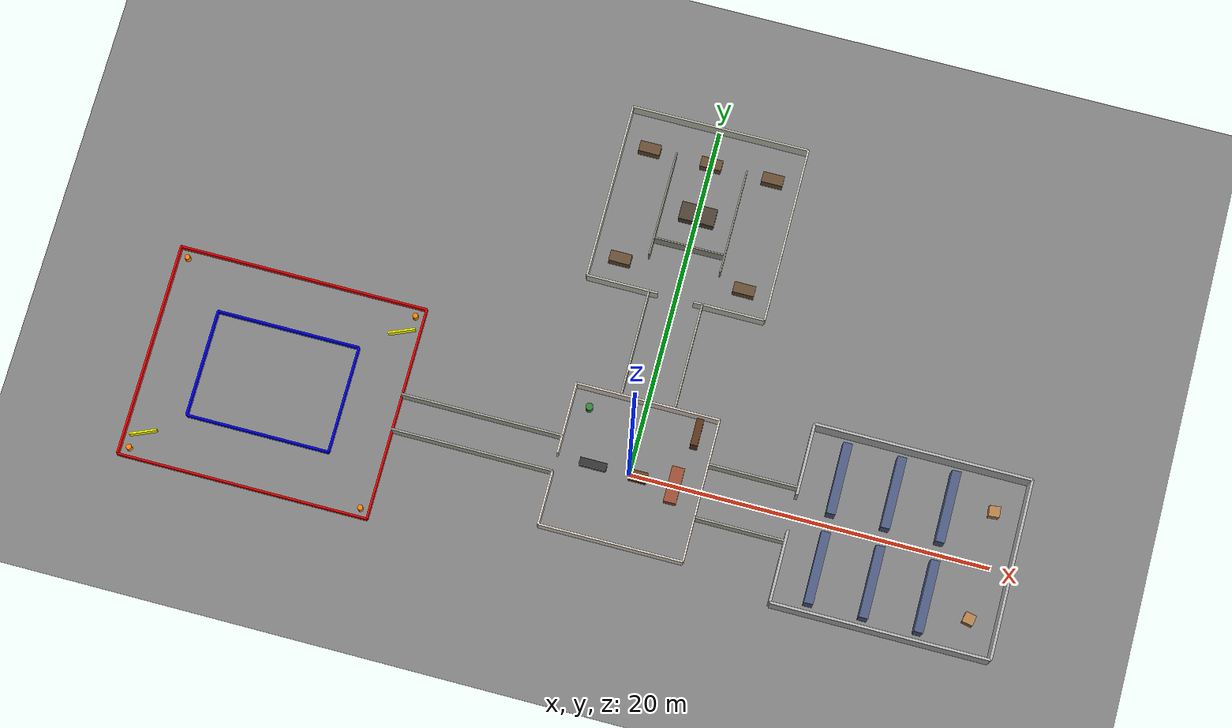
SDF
<sdf version="1.8">
 <world name="full_world">
  <model name="ground_plane">
   <static>true</static>
   <link name="link">
    <collision name="collision">
     <geometry><plane><normal>0 0 1</normal><size>200 200</size></plane></geometry>
    </collision>
    <visual name="visual">
     <geometry><plane><normal>0 0 1</normal><size>200 200</size></plane></geometry>
     <material><ambient>0.5 0.5 0.5 1</ambient><diffuse>0.5 0.5 0.5 1</diffuse></material>
    </visual>
   </link>
  </model>
  <model name="room_wall_n">
   <static>true</static>
   <pose>0 4 0.5 0 0 0</pose>
   <link name="link">
    <collision name="collision"><geometry><box><size>8 0.1 1</size></box></geometry></collision>
    <visual name="visual">
     <geometry><box><size>8 0.1 1</size></box></geometry>
     <material><ambient>0.9 0.85 0.8 1</ambient><diffuse>0.9 0.85 0.8 1</diffuse></material>
    </visual>
   </link>
  </model>
  <model name="room_wall_s">
   <static>true</static>
   <pose>0 -4 0.5 0 0 0</pose>
   <link name="link">
    <collision name="collision"><geometry><box><size>8 0.1 1</size></box></geometry></collision>
    <visual name="visual">
     <geometry><box><size>8 0.1 1</size></box></geometry>
     <material><ambient>0.9 0.85 0.8 1</ambient><diffuse>0.9 0.85 0.8 1</diffuse></material>
    </visual>
   </link>
  </model>
  <model name="room_wall_e">
   <static>true</static>
   <pose>4 0 0.5 0 0 0</pose>
   <link name="link">
    <collision name="collision"><geometry><box><size>0.1 8 1</size></box></geometry></collision>
    <visual name="visual">
     <geometry><box><size>0.1 8 1</size></box></geometry>
     <material><ambient>0.9 0.85 0.8 1</ambient><diffuse>0.9 0.85 0.8 1</diffuse></material>
    </visual>
   </link>
  </model>
  <model name="room_wall_w1">
   <static>true</static>
   <pose>-4 2 0.5 0 0 0</pose>
   <link name="link">
    <collision name="collision"><geometry><box><size>0.1 4 1</size></box></geometry></collision>
    <visual name="visual">
     <geometry><box><size>0.1 4 1</size></box></geometry>
     <material><ambient>0.9 0.85 0.8 1</ambient><diffuse>0.9 0.85 0.8 1</diffuse></material>
    </visual>
   </link>
  </model>
  <model name="room_wall_w2">
   <static>true</static>
   <pose>-4 -2.5 0.5 0 0 0</pose>
   <link name="link">
    <collision name="collision"><geometry><box><size>0.1 3 1</size></box></geometry></collision>
    <visual name="visual">
     <geometry><box><size>0.1 3 1</size></box></geometry>
     <material><ambient>0.9 0.85 0.8 1</ambient><diffuse>0.9 0.85 0.8 1</diffuse></material>
    </visual>
   </link>
  </model>
  <model name="sofa">
   <static>true</static>
   <pose>2.5 0 0.3 0 0 1.57</pose>
   <link name="link">
    <collision name="collision"><geometry><box><size>2 0.7 0.6</size></box></geometry></collision>
    <visual name="visual">
     <geometry><box><size>2 0.7 0.6</size></box></geometry>
     <material><ambient>0.6 0.3 0.2 1</ambient><diffuse>0.6 0.3 0.2 1</diffuse></material>
    </visual>
   </link>
  </model>
  <model name="coffee_table">
   <static>true</static>
   <pose>0.5 0 0.2 0 0 0</pose>
   <link name="link">
    <collision name="collision"><geometry><box><size>1 0.6 0.4</size></box></geometry></collision>
    <visual name="visual">
     <geometry><box><size>1 0.6 0.4</size></box></geometry>
     <material><ambient>0.4 0.25 0.1 1</ambient><diffuse>0.4 0.25 0.1 1</diffuse></material>
    </visual>
   </link>
  </model>
  <model name="tv_stand">
   <static>true</static>
   <pose>-2 0 0.3 0 0 0</pose>
   <link name="link">
    <collision name="collision"><geometry><box><size>1.5 0.4 0.6</size></box></geometry></collision>
    <visual name="visual">
     <geometry><box><size>1.5 0.4 0.6</size></box></geometry>
     <material><ambient>0.2 0.2 0.2 1</ambient><diffuse>0.2 0.2 0.2 1</diffuse></material>
    </visual>
   </link>
  </model>
  <model name="bookshelf">
   <static>true</static>
   <pose>3 3 0.6 0 0 0</pose>
   <link name="link">
    <collision name="collision"><geometry><box><size>0.4 1.5 1.2</size></box></geometry></collision>
    <visual name="visual">
     <geometry><box><size>0.4 1.5 1.2</size></box></geometry>
     <material><ambient>0.35 0.2 0.1 1</ambient><diffuse>0.35 0.2 0.1 1</diffuse></material>
    </visual>
   </link>
  </model>
  <model name="plant1">
   <static>true</static>
   <pose>-3 3 0.3 0 0 0</pose>
   <link name="link">
    <collision name="collision">
     <geometry><cylinder><radius>0.2</radius><length>0.6</length></cylinder></geometry>
    </collision>
    <visual name="visual">
     <geometry><cylinder><radius>0.2</radius><length>0.6</length></cylinder></geometry>
     <material><ambient>0.2 0.5 0.2 1</ambient><diffuse>0.2 0.5 0.2 1</diffuse></material>
    </visual>
   </link>
  </model>
  <model name="wh_wall_n">
   <static>true</static>
   <pose>15 5 0.75 0 0 0</pose>
   <link name="link">
    <collision name="collision"><geometry><box><size>12 0.15 1.5</size></box></geometry></collision>
    <visual name="visual">
     <geometry><box><size>12 0.15 1.5</size></box></geometry>
     <material><ambient>0.7 0.7 0.7 1</ambient><diffuse>0.7 0.7 0.7 1</diffuse></material>
    </visual>
   </link>
  </model>
  <model name="wh_wall_s">
   <static>true</static>
   <pose>15 -5 0.75 0 0 0</pose>
   <link name="link">
    <collision name="collision"><geometry><box><size>12 0.15 1.5</size></box></geometry></collision>
    <visual name="visual">
     <geometry><box><size>12 0.15 1.5</size></box></geometry>
     <material><ambient>0.7 0.7 0.7 1</ambient><diffuse>0.7 0.7 0.7 1</diffuse></material>
    </visual>
   </link>
  </model>
  <model name="wh_wall_e">
   <static>true</static>
   <pose>21 0 0.75 0 0 0</pose>
   <link name="link">
    <collision name="collision"><geometry><box><size>0.15 10 1.5</size></box></geometry></collision>
    <visual name="visual">
     <geometry><box><size>0.15 10 1.5</size></box></geometry>
     <material><ambient>0.7 0.7 0.7 1</ambient><diffuse>0.7 0.7 0.7 1</diffuse></material>
    </visual>
   </link>
  </model>
  <model name="wh_wall_w1">
   <static>true</static>
   <pose>9 3 0.75 0 0 0</pose>
   <link name="link">
    <collision name="collision"><geometry><box><size>0.15 4 1.5</size></box></geometry></collision>
    <visual name="visual">
     <geometry><box><size>0.15 4 1.5</size></box></geometry>
     <material><ambient>0.7 0.7 0.7 1</ambient><diffuse>0.7 0.7 0.7 1</diffuse></material>
    </visual>
   </link>
  </model>
  <model name="wh_wall_w2">
   <static>true</static>
   <pose>9 -3 0.75 0 0 0</pose>
   <link name="link">
    <collision name="collision"><geometry><box><size>0.15 4 1.5</size></box></geometry></collision>
    <visual name="visual">
     <geometry><box><size>0.15 4 1.5</size></box></geometry>
     <material><ambient>0.7 0.7 0.7 1</ambient><diffuse>0.7 0.7 0.7 1</diffuse></material>
    </visual>
   </link>
  </model>
  <model name="shelf_a1">
   <static>true</static>
   <pose>11 2.5 0.6 0 0 0</pose>
   <link name="link">
    <collision name="collision"><geometry><box><size>0.5 4 1.2</size></box></geometry></collision>
    <visual name="visual">
     <geometry><box><size>0.5 4 1.2</size></box></geometry>
     <material><ambient>0.3 0.35 0.5 1</ambient><diffuse>0.3 0.35 0.5 1</diffuse></material>
    </visual>
   </link>
  </model>
  <model name="shelf_a2">
   <static>true</static>
   <pose>14 2.5 0.6 0 0 0</pose>
   <link name="link">
    <collision name="collision"><geometry><box><size>0.5 4 1.2</size></box></geometry></collision>
    <visual name="visual">
     <geometry><box><size>0.5 4 1.2</size></box></geometry>
     <material><ambient>0.3 0.35 0.5 1</ambient><diffuse>0.3 0.35 0.5 1</diffuse></material>
    </visual>
   </link>
  </model>
  <model name="shelf_a3">
   <static>true</static>
   <pose>17 2.5 0.6 0 0 0</pose>
   <link name="link">
    <collision name="collision"><geometry><box><size>0.5 4 1.2</size></box></geometry></collision>
    <visual name="visual">
     <geometry><box><size>0.5 4 1.2</size></box></geometry>
     <material><ambient>0.3 0.35 0.5 1</ambient><diffuse>0.3 0.35 0.5 1</diffuse></material>
    </visual>
   </link>
  </model>
  <model name="shelf_b1">
   <static>true</static>
   <pose>11 -2.5 0.6 0 0 0</pose>
   <link name="link">
    <collision name="collision"><geometry><box><size>0.5 4 1.2</size></box></geometry></collision>
    <visual name="visual">
     <geometry><box><size>0.5 4 1.2</size></box></geometry>
     <material><ambient>0.3 0.35 0.5 1</ambient><diffuse>0.3 0.35 0.5 1</diffuse></material>
    </visual>
   </link>
  </model>
  <model name="shelf_b2">
   <static>true</static>
   <pose>14 -2.5 0.6 0 0 0</pose>
   <link name="link">
    <collision name="collision"><geometry><box><size>0.5 4 1.2</size></box></geometry></collision>
    <visual name="visual">
     <geometry><box><size>0.5 4 1.2</size></box></geometry>
     <material><ambient>0.3 0.35 0.5 1</ambient><diffuse>0.3 0.35 0.5 1</diffuse></material>
    </visual>
   </link>
  </model>
  <model name="shelf_b3">
   <static>true</static>
   <pose>17 -2.5 0.6 0 0 0</pose>
   <link name="link">
    <collision name="collision"><geometry><box><size>0.5 4 1.2</size></box></geometry></collision>
    <visual name="visual">
     <geometry><box><size>0.5 4 1.2</size></box></geometry>
     <material><ambient>0.3 0.35 0.5 1</ambient><diffuse>0.3 0.35 0.5 1</diffuse></material>
    </visual>
   </link>
  </model>
  <model name="wh_box1">
   <static>true</static>
   <pose>19.5 3 0.3 0 0 0.1</pose>
   <link name="link">
    <collision name="collision"><geometry><box><size>0.6 0.6 0.6</size></box></geometry></collision>
    <visual name="visual">
     <geometry><box><size>0.6 0.6 0.6</size></box></geometry>
     <material><ambient>0.7 0.5 0.3 1</ambient><diffuse>0.7 0.5 0.3 1</diffuse></material>
    </visual>
   </link>
  </model>
  <model name="wh_box2">
   <static>true</static>
   <pose>19.5 -3 0.3 0 0 -0.2</pose>
   <link name="link">
    <collision name="collision"><geometry><box><size>0.6 0.6 0.6</size></box></geometry></collision>
    <visual name="visual">
     <geometry><box><size>0.6 0.6 0.6</size></box></geometry>
     <material><ambient>0.7 0.5 0.3 1</ambient><diffuse>0.7 0.5 0.3 1</diffuse></material>
    </visual>
   </link>
  </model>
  <model name="off_wall_n">
   <static>true</static>
   <pose>0 20 0.5 0 0 0</pose>
   <link name="link">
    <collision name="collision"><geometry><box><size>10 0.1 1</size></box></geometry></collision>
    <visual name="visual">
     <geometry><box><size>10 0.1 1</size></box></geometry>
     <material><ambient>0.8 0.8 0.75 1</ambient><diffuse>0.8 0.8 0.75 1</diffuse></material>
    </visual>
   </link>
  </model>
  <model name="off_wall_s1">
   <static>true</static>
   <pose>-3 10 0.5 0 0 0</pose>
   <link name="link">
    <collision name="collision"><geometry><box><size>4 0.1 1</size></box></geometry></collision>
    <visual name="visual">
     <geometry><box><size>4 0.1 1</size></box></geometry>
     <material><ambient>0.8 0.8 0.75 1</ambient><diffuse>0.8 0.8 0.75 1</diffuse></material>
    </visual>
   </link>
  </model>
  <model name="off_wall_s2">
   <static>true</static>
   <pose>3 10 0.5 0 0 0</pose>
   <link name="link">
    <collision name="collision"><geometry><box><size>4 0.1 1</size></box></geometry></collision>
    <visual name="visual">
     <geometry><box><size>4 0.1 1</size></box></geometry>
     <material><ambient>0.8 0.8 0.75 1</ambient><diffuse>0.8 0.8 0.75 1</diffuse></material>
    </visual>
   </link>
  </model>
  <model name="off_wall_e">
   <static>true</static>
   <pose>5 15 0.5 0 0 0</pose>
   <link name="link">
    <collision name="collision"><geometry><box><size>0.1 10 1</size></box></geometry></collision>
    <visual name="visual">
     <geometry><box><size>0.1 10 1</size></box></geometry>
     <material><ambient>0.8 0.8 0.75 1</ambient><diffuse>0.8 0.8 0.75 1</diffuse></material>
    </visual>
   </link>
  </model>
  <model name="off_wall_w">
   <static>true</static>
   <pose>-5 15 0.5 0 0 0</pose>
   <link name="link">
    <collision name="collision"><geometry><box><size>0.1 10 1</size></box></geometry></collision>
    <visual name="visual">
     <geometry><box><size>0.1 10 1</size></box></geometry>
     <material><ambient>0.8 0.8 0.75 1</ambient><diffuse>0.8 0.8 0.75 1</diffuse></material>
    </visual>
   </link>
  </model>
  <model name="off_part1">
   <static>true</static>
   <pose>-2 15 0.5 0 0 0</pose>
   <link name="link">
    <collision name="collision"><geometry><box><size>0.08 6 1</size></box></geometry></collision>
    <visual name="visual">
     <geometry><box><size>0.08 6 1</size></box></geometry>
     <material><ambient>0.6 0.6 0.55 1</ambient><diffuse>0.6 0.6 0.55 1</diffuse></material>
    </visual>
   </link>
  </model>
  <model name="off_part2">
   <static>true</static>
   <pose>2 15 0.5 0 0 0</pose>
   <link name="link">
    <collision name="collision"><geometry><box><size>0.08 6 1</size></box></geometry></collision>
    <visual name="visual">
     <geometry><box><size>0.08 6 1</size></box></geometry>
     <material><ambient>0.6 0.6 0.55 1</ambient><diffuse>0.6 0.6 0.55 1</diffuse></material>
    </visual>
   </link>
  </model>
  <model name="off_part3">
   <static>true</static>
   <pose>0 13 0.5 0 0 0</pose>
   <link name="link">
    <collision name="collision"><geometry><box><size>4 0.08 1</size></box></geometry></collision>
    <visual name="visual">
     <geometry><box><size>4 0.08 1</size></box></geometry>
     <material><ambient>0.6 0.6 0.55 1</ambient><diffuse>0.6 0.6 0.55 1</diffuse></material>
    </visual>
   </link>
  </model>
  <model name="off_desk1">
   <static>true</static>
   <pose>-3.5 18 0.35 0 0 0</pose>
   <link name="link">
    <collision name="collision"><geometry><box><size>1.2 0.6 0.7</size></box></geometry></collision>
    <visual name="visual">
     <geometry><box><size>1.2 0.6 0.7</size></box></geometry>
     <material><ambient>0.4 0.3 0.2 1</ambient><diffuse>0.4 0.3 0.2 1</diffuse></material>
    </visual>
   </link>
  </model>
  <model name="off_desk2">
   <static>true</static>
   <pose>0 18 0.35 0 0 0</pose>
   <link name="link">
    <collision name="collision"><geometry><box><size>1.2 0.6 0.7</size></box></geometry></collision>
    <visual name="visual">
     <geometry><box><size>1.2 0.6 0.7</size></box></geometry>
     <material><ambient>0.4 0.3 0.2 1</ambient><diffuse>0.4 0.3 0.2 1</diffuse></material>
    </visual>
   </link>
  </model>
  <model name="off_desk3">
   <static>true</static>
   <pose>3.5 18 0.35 0 0 0</pose>
   <link name="link">
    <collision name="collision"><geometry><box><size>1.2 0.6 0.7</size></box></geometry></collision>
    <visual name="visual">
     <geometry><box><size>1.2 0.6 0.7</size></box></geometry>
     <material><ambient>0.4 0.3 0.2 1</ambient><diffuse>0.4 0.3 0.2 1</diffuse></material>
    </visual>
   </link>
  </model>
  <model name="off_desk4">
   <static>true</static>
   <pose>-3.5 11.5 0.35 0 0 0</pose>
   <link name="link">
    <collision name="collision"><geometry><box><size>1.2 0.6 0.7</size></box></geometry></collision>
    <visual name="visual">
     <geometry><box><size>1.2 0.6 0.7</size></box></geometry>
     <material><ambient>0.4 0.3 0.2 1</ambient><diffuse>0.4 0.3 0.2 1</diffuse></material>
    </visual>
   </link>
  </model>
  <model name="off_desk5">
   <static>true</static>
   <pose>3.5 11.5 0.35 0 0 0</pose>
   <link name="link">
    <collision name="collision"><geometry><box><size>1.2 0.6 0.7</size></box></geometry></collision>
    <visual name="visual">
     <geometry><box><size>1.2 0.6 0.7</size></box></geometry>
     <material><ambient>0.4 0.3 0.2 1</ambient><diffuse>0.4 0.3 0.2 1</diffuse></material>
    </visual>
   </link>
  </model>
  <model name="meeting_table">
   <static>true</static>
   <pose>0 15 0.35 0 0 0</pose>
   <link name="link">
    <collision name="collision"><geometry><box><size>2 1 0.7</size></box></geometry></collision>
    <visual name="visual">
     <geometry><box><size>2 1 0.7</size></box></geometry>
     <material><ambient>0.3 0.25 0.2 1</ambient><diffuse>0.3 0.25 0.2 1</diffuse></material>
    </visual>
   </link>
  </model>
  <model name="track_outer_n">
   <static>true</static>
   <pose>-20 6 0.25 0 0 0</pose>
   <link name="link">
    <collision name="collision"><geometry><box><size>14 0.1 0.5</size></box></geometry></collision>
    <visual name="visual">
     <geometry><box><size>14 0.1 0.5</size></box></geometry>
     <material><ambient>1 0 0 1</ambient><diffuse>1 0 0 1</diffuse></material>
    </visual>
   </link>
  </model>
  <model name="track_outer_s">
   <static>true</static>
   <pose>-20 -6 0.25 0 0 0</pose>
   <link name="link">
    <collision name="collision"><geometry><box><size>14 0.1 0.5</size></box></geometry></collision>
    <visual name="visual">
     <geometry><box><size>14 0.1 0.5</size></box></geometry>
     <material><ambient>1 0 0 1</ambient><diffuse>1 0 0 1</diffuse></material>
    </visual>
   </link>
  </model>
  <model name="track_outer_e">
   <static>true</static>
   <pose>-13 0 0.25 0 0 0</pose>
   <link name="link">
    <collision name="collision"><geometry><box><size>0.1 12 0.5</size></box></geometry></collision>
    <visual name="visual">
     <geometry><box><size>0.1 12 0.5</size></box></geometry>
     <material><ambient>1 0 0 1</ambient><diffuse>1 0 0 1</diffuse></material>
    </visual>
   </link>
  </model>
  <model name="track_outer_w">
   <static>true</static>
   <pose>-27 0 0.25 0 0 0</pose>
   <link name="link">
    <collision name="collision"><geometry><box><size>0.1 12 0.5</size></box></geometry></collision>
    <visual name="visual">
     <geometry><box><size>0.1 12 0.5</size></box></geometry>
     <material><ambient>1 0 0 1</ambient><diffuse>1 0 0 1</diffuse></material>
    </visual>
   </link>
  </model>
  <model name="track_inner_n">
   <static>true</static>
   <pose>-20 3 0.25 0 0 0</pose>
   <link name="link">
    <collision name="collision"><geometry><box><size>8 0.1 0.5</size></box></geometry></collision>
    <visual name="visual">
     <geometry><box><size>8 0.1 0.5</size></box></geometry>
     <material><ambient>0 0 1 1</ambient><diffuse>0 0 1 1</diffuse></material>
    </visual>
   </link>
  </model>
  <model name="track_inner_s">
   <static>true</static>
   <pose>-20 -3 0.25 0 0 0</pose>
   <link name="link">
    <collision name="collision"><geometry><box><size>8 0.1 0.5</size></box></geometry></collision>
    <visual name="visual">
     <geometry><box><size>8 0.1 0.5</size></box></geometry>
     <material><ambient>0 0 1 1</ambient><diffuse>0 0 1 1</diffuse></material>
    </visual>
   </link>
  </model>
  <model name="track_inner_e">
   <static>true</static>
   <pose>-16 0 0.25 0 0 0</pose>
   <link name="link">
    <collision name="collision"><geometry><box><size>0.1 6 0.5</size></box></geometry></collision>
    <visual name="visual">
     <geometry><box><size>0.1 6 0.5</size></box></geometry>
     <material><ambient>0 0 1 1</ambient><diffuse>0 0 1 1</diffuse></material>
    </visual>
   </link>
  </model>
  <model name="track_inner_w">
   <static>true</static>
   <pose>-24 0 0.25 0 0 0</pose>
   <link name="link">
    <collision name="collision"><geometry><box><size>0.1 6 0.5</size></box></geometry></collision>
    <visual name="visual">
     <geometry><box><size>0.1 6 0.5</size></box></geometry>
     <material><ambient>0 0 1 1</ambient><diffuse>0 0 1 1</diffuse></material>
    </visual>
   </link>
  </model>
  <model name="chicane1">
   <static>true</static>
   <pose>-14 4.5 0.25 0 0 0.4</pose>
   <link name="link">
    <collision name="collision"><geometry><box><size>1.5 0.1 0.5</size></box></geometry></collision>
    <visual name="visual">
     <geometry><box><size>1.5 0.1 0.5</size></box></geometry>
     <material><ambient>1 1 0 1</ambient><diffuse>1 1 0 1</diffuse></material>
    </visual>
   </link>
  </model>
  <model name="chicane2">
   <static>true</static>
   <pose>-26 -4.5 0.25 0 0 0.4</pose>
   <link name="link">
    <collision name="collision"><geometry><box><size>1.5 0.1 0.5</size></box></geometry></collision>
    <visual name="visual">
     <geometry><box><size>1.5 0.1 0.5</size></box></geometry>
     <material><ambient>1 1 0 1</ambient><diffuse>1 1 0 1</diffuse></material>
    </visual>
   </link>
  </model>
  <model name="marker1">
   <static>true</static>
   <pose>-13.5 5.5 0.25 0 0 0</pose>
   <link name="link">
    <collision name="collision">
     <geometry><cylinder><radius>0.15</radius><length>0.5</length></cylinder></geometry>
    </collision>
    <visual name="visual">
     <geometry><cylinder><radius>0.15</radius><length>0.5</length></cylinder></geometry>
     <material><ambient>1 0.5 0 1</ambient><diffuse>1 0.5 0 1</diffuse></material>
    </visual>
   </link>
  </model>
  <model name="marker2">
   <static>true</static>
   <pose>-26.5 5.5 0.25 0 0 0</pose>
   <link name="link">
    <collision name="collision">
     <geometry><cylinder><radius>0.15</radius><length>0.5</length></cylinder></geometry>
    </collision>
    <visual name="visual">
     <geometry><cylinder><radius>0.15</radius><length>0.5</length></cylinder></geometry>
     <material><ambient>1 0.5 0 1</ambient><diffuse>1 0.5 0 1</diffuse></material>
    </visual>
   </link>
  </model>
  <model name="marker3">
   <static>true</static>
   <pose>-13.5 -5.5 0.25 0 0 0</pose>
   <link name="link">
    <collision name="collision">
     <geometry><cylinder><radius>0.15</radius><length>0.5</length></cylinder></geometry>
    </collision>
    <visual name="visual">
     <geometry><cylinder><radius>0.15</radius><length>0.5</length></cylinder></geometry>
     <material><ambient>1 0.5 0 1</ambient><diffuse>1 0.5 0 1</diffuse></material>
    </visual>
   </link>
  </model>
  <model name="marker4">
   <static>true</static>
   <pose>-26.5 -5.5 0.25 0 0 0</pose>
   <link name="link">
    <collision name="collision">
     <geometry><cylinder><radius>0.15</radius><length>0.5</length></cylinder></geometry>
    </collision>
    <visual name="visual">
     <geometry><cylinder><radius>0.15</radius><length>0.5</length></cylinder></geometry>
     <material><ambient>1 0.5 0 1</ambient><diffuse>1 0.5 0 1</diffuse></material>
    </visual>
   </link>
  </model>
  <model name="corridor1_n">
   <static>true</static>
   <pose>6.5 1.5 0.5 0 0 0</pose>
   <link name="link">
    <collision name="collision"><geometry><box><size>5 0.1 1</size></box></geometry></collision>
    <visual name="visual">
     <geometry><box><size>5 0.1 1</size></box></geometry>
     <material><ambient>0.7 0.7 0.65 1</ambient><diffuse>0.7 0.7 0.65 1</diffuse></material>
    </visual>
   </link>
  </model>
  <model name="corridor1_s">
   <static>true</static>
   <pose>6.5 -1.5 0.5 0 0 0</pose>
   <link name="link">
    <collision name="collision"><geometry><box><size>5 0.1 1</size></box></geometry></collision>
    <visual name="visual">
     <geometry><box><size>5 0.1 1</size></box></geometry>
     <material><ambient>0.7 0.7 0.65 1</ambient><diffuse>0.7 0.7 0.65 1</diffuse></material>
    </visual>
   </link>
  </model>
  <model name="corridor2_e">
   <static>true</static>
   <pose>1.5 7 0.5 0 0 0</pose>
   <link name="link">
    <collision name="collision"><geometry><box><size>0.1 6 1</size></box></geometry></collision>
    <visual name="visual">
     <geometry><box><size>0.1 6 1</size></box></geometry>
     <material><ambient>0.7 0.7 0.65 1</ambient><diffuse>0.7 0.7 0.65 1</diffuse></material>
    </visual>
   </link>
  </model>
  <model name="corridor2_w">
   <static>true</static>
   <pose>-1.5 7 0.5 0 0 0</pose>
   <link name="link">
    <collision name="collision"><geometry><box><size>0.1 6 1</size></box></geometry></collision>
    <visual name="visual">
     <geometry><box><size>0.1 6 1</size></box></geometry>
     <material><ambient>0.7 0.7 0.65 1</ambient><diffuse>0.7 0.7 0.65 1</diffuse></material>
    </visual>
   </link>
  </model>
  <model name="corridor3_n">
   <static>true</static>
   <pose>-8.5 1 0.5 0 0 0</pose>
   <link name="link">
    <collision name="collision"><geometry><box><size>9 0.1 1</size></box></geometry></collision>
    <visual name="visual">
     <geometry><box><size>9 0.1 1</size></box></geometry>
     <material><ambient>0.7 0.7 0.65 1</ambient><diffuse>0.7 0.7 0.65 1</diffuse></material>
    </visual>
   </link>
  </model>
  <model name="corridor3_s">
   <static>true</static>
   <pose>-8.5 -1 0.5 0 0 0</pose>
   <link name="link">
    <collision name="collision"><geometry><box><size>9 0.1 1</size></box></geometry></collision>
    <visual name="visual">
     <geometry><box><size>9 0.1 1</size></box></geometry>
     <material><ambient>0.7 0.7 0.65 1</ambient><diffuse>0.7 0.7 0.65 1</diffuse></material>
    </visual>
   </link>
  </model>
 </world>
</sdf>
